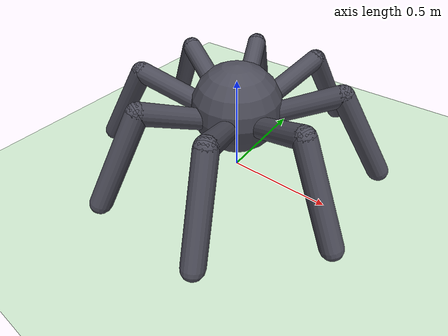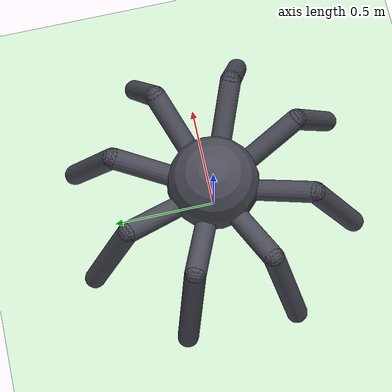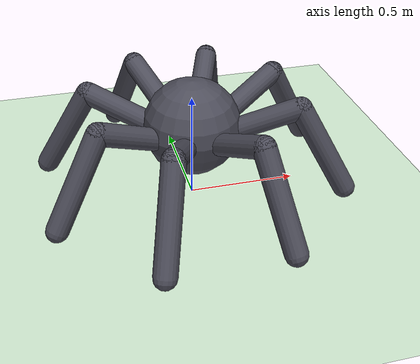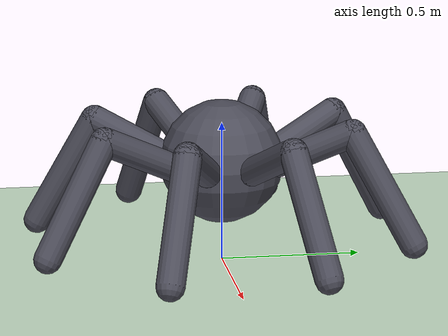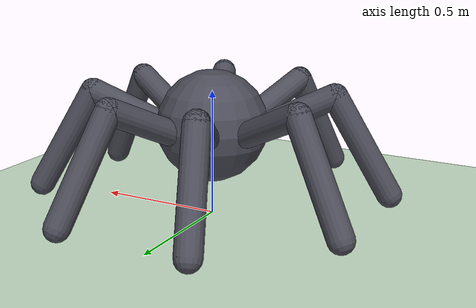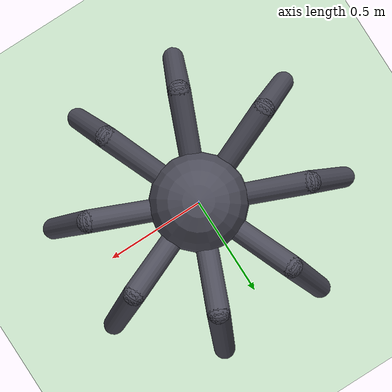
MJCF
<mujoco model="spider8">
  <compiler angle="radian"/>

  <option timestep="0.01" integrator="RK4"/>

  <default>
    <joint limited="true" armature="1" damping="1"/>
    <geom conaffinity="0" friction="1 0.5 0.5" margin="0.01" density="5" rgba="0.3 0.3 0.35 1"/>
  </default>

  <asset>
    <texture type="skybox" colorspace="auto" name="sky" builtin="gradient" rgb1="1 1 1" rgb2="0 0 0" width="100" height="600"/>
    <texture type="2d" colorspace="auto" name="texplane" builtin="checker" rgb1="0 0 0" rgb2="0.8 0.8 0.8" width="100" height="100"/>
    <material name="MatPlane" texture="texplane" texrepeat="60 60" specular="1" shininess="1" reflectance="0.5"/>
  </asset>

  <worldbody>
    <geom name="floor" size="40 40 40" type="plane" conaffinity="1" material="MatPlane" rgba="0.8 0.9 0.8 1"/>
    <light pos="0 0 1.3" dir="0 0 -1" type="directional" cutoff="100" diffuse="1 1 1" specular="0.1 0.1 0.1"/>
    <body name="torso" pos="0 0 0.362926">
      <joint name="root" type="free" margin="0.01" armature="0" damping="0"/>
      <geom name="torso_geom" size="0.22"/>
      <camera name="track" pos="0 -3 0.3" quat="0.707107 0.707107 0 0" mode="trackcom"/>
      <body name="leg1">
        <geom name="leg1_mount_geom" size="0.05 0.1" pos="0.092388 0.0382683 0" quat="0.707107 0.270598 -0.653281 0" type="capsule"/>
        <body name="leg1_seg1" pos="0.184776 0.0765367 0">
          <joint name="leg1_seg1_joint" pos="0 0 0" axis="0 0 1" range="-0.610865 0.610865"/>
          <geom name="leg1_seg1_geom" size="0.05 0.15" pos="0.125598 0.0520243 0.0633927" quat="0.5373 0.322752 -0.779192 0" type="capsule"/>
          <body name="leg1_seg2" pos="0.251196 0.104049 0.126785">
            <joint name="leg1_seg2_joint" pos="0 0 0" axis="-0.382683 0.92388 0" range="-0.785398 0.785398"/>
            <geom name="leg1_seg2_geom" size="0.05 0.225" pos="0.103936 0.0430519 -0.194856" quat="0.965926 0.0990458 -0.239118 0" type="capsule"/>
          </body>
        </body>
      </body>
      <body name="leg2">
        <geom name="leg2_mount_geom" size="0.05 0.1" pos="0.0382683 0.092388 0" quat="0.707107 0.653281 -0.270598 0" type="capsule"/>
        <body name="leg2_seg1" pos="0.0765367 0.184776 0">
          <joint name="leg2_seg1_joint" pos="0 0 0" axis="0 0 1" range="-0.610865 0.610865"/>
          <geom name="leg2_seg1_geom" size="0.05 0.15" pos="0.0520243 0.125598 0.0633927" quat="0.5373 0.779192 -0.322752 0" type="capsule"/>
          <body name="leg2_seg2" pos="0.104049 0.251196 0.126785">
            <joint name="leg2_seg2_joint" pos="0 0 0" axis="-0.92388 0.382683 0" range="-0.785398 0.785398"/>
            <geom name="leg2_seg2_geom" size="0.05 0.225" pos="0.0430519 0.103936 -0.194856" quat="0.965926 0.239118 -0.0990458 0" type="capsule"/>
          </body>
        </body>
      </body>
      <body name="leg3">
        <geom name="leg3_mount_geom" size="0.05 0.1" pos="-0.0382683 0.092388 0" quat="0.707107 0.653281 0.270598 0" type="capsule"/>
        <body name="leg3_seg1" pos="-0.0765367 0.184776 0">
          <joint name="leg3_seg1_joint" pos="0 0 0" axis="0 0 1" range="-0.610865 0.610865"/>
          <geom name="leg3_seg1_geom" size="0.05 0.15" pos="-0.0520243 0.125598 0.0633927" quat="0.5373 0.779192 0.322752 0" type="capsule"/>
          <body name="leg3_seg2" pos="-0.104049 0.251196 0.126785">
            <joint name="leg3_seg2_joint" pos="0 0 0" axis="-0.92388 -0.382683 0" range="-0.785398 0.785398"/>
            <geom name="leg3_seg2_geom" size="0.05 0.225" pos="-0.0430519 0.103936 -0.194856" quat="0.965926 0.239118 0.0990458 0" type="capsule"/>
          </body>
        </body>
      </body>
      <body name="leg4">
        <geom name="leg4_mount_geom" size="0.05 0.1" pos="-0.092388 0.0382683 0" quat="0.707107 0.270598 0.653281 0" type="capsule"/>
        <body name="leg4_seg1" pos="-0.184776 0.0765367 0">
          <joint name="leg4_seg1_joint" pos="0 0 0" axis="0 0 1" range="-0.610865 0.610865"/>
          <geom name="leg4_seg1_geom" size="0.05 0.15" pos="-0.125598 0.0520243 0.0633927" quat="0.5373 0.322752 0.779192 0" type="capsule"/>
          <body name="leg4_seg2" pos="-0.251196 0.104049 0.126785">
            <joint name="leg4_seg2_joint" pos="0 0 0" axis="-0.382683 -0.92388 0" range="-0.785398 0.785398"/>
            <geom name="leg4_seg2_geom" size="0.05 0.225" pos="-0.103936 0.0430519 -0.194856" quat="0.965926 0.0990458 0.239118 0" type="capsule"/>
          </body>
        </body>
      </body>
      <body name="leg5">
        <geom name="leg5_mount_geom" size="0.05 0.1" pos="-0.092388 -0.0382683 0" quat="0.707107 -0.270598 0.653281 0" type="capsule"/>
        <body name="leg5_seg1" pos="-0.184776 -0.0765367 0">
          <joint name="leg5_seg1_joint" pos="0 0 0" axis="0 0 1" range="-0.610865 0.610865"/>
          <geom name="leg5_seg1_geom" size="0.05 0.15" pos="-0.125598 -0.0520243 0.0633927" quat="0.5373 -0.322752 0.779192 0" type="capsule"/>
          <body name="leg5_seg2" pos="-0.251196 -0.104049 0.126785">
            <joint name="leg5_seg2_joint" pos="0 0 0" axis="0.382683 -0.92388 0" range="-0.785398 0.785398"/>
            <geom name="leg5_seg2_geom" size="0.05 0.225" pos="-0.103936 -0.0430519 -0.194856" quat="0.965926 -0.0990458 0.239118 0" type="capsule"/>
          </body>
        </body>
      </body>
      <body name="leg6">
        <geom name="leg6_mount_geom" size="0.05 0.1" pos="-0.0382683 -0.092388 0" quat="0.707107 -0.653281 0.270598 0" type="capsule"/>
        <body name="leg6_seg1" pos="-0.0765367 -0.184776 0">
          <joint name="leg6_seg1_joint" pos="0 0 0" axis="0 0 1" range="-0.610865 0.610865"/>
          <geom name="leg6_seg1_geom" size="0.05 0.15" pos="-0.0520243 -0.125598 0.0633927" quat="0.5373 -0.779192 0.322752 0" type="capsule"/>
          <body name="leg6_seg2" pos="-0.104049 -0.251196 0.126785">
            <joint name="leg6_seg2_joint" pos="0 0 0" axis="0.92388 -0.382683 0" range="-0.785398 0.785398"/>
            <geom name="leg6_seg2_geom" size="0.05 0.225" pos="-0.0430519 -0.103936 -0.194856" quat="0.965926 -0.239118 0.0990458 0" type="capsule"/>
          </body>
        </body>
      </body>
      <body name="leg7">
        <geom name="leg7_mount_geom" size="0.05 0.1" pos="0.0382683 -0.092388 0" quat="0.707107 -0.653281 -0.270598 0" type="capsule"/>
        <body name="leg7_seg1" pos="0.0765367 -0.184776 0">
          <joint name="leg7_seg1_joint" pos="0 0 0" axis="0 0 1" range="-0.610865 0.610865"/>
          <geom name="leg7_seg1_geom" size="0.05 0.15" pos="0.0520243 -0.125598 0.0633927" quat="0.5373 -0.779192 -0.322752 0" type="capsule"/>
          <body name="leg7_seg2" pos="0.104049 -0.251196 0.126785">
            <joint name="leg7_seg2_joint" pos="0 0 0" axis="0.92388 0.382683 0" range="-0.785398 0.785398"/>
            <geom name="leg7_seg2_geom" size="0.05 0.225" pos="0.0430519 -0.103936 -0.194856" quat="0.965926 -0.239118 -0.0990458 0" type="capsule"/>
          </body>
        </body>
      </body>
      <body name="leg8">
        <geom name="leg8_mount_geom" size="0.05 0.1" pos="0.092388 -0.0382683 0" quat="0.707107 -0.270598 -0.653281 0" type="capsule"/>
        <body name="leg8_seg1" pos="0.184776 -0.0765367 0">
          <joint name="leg8_seg1_joint" pos="0 0 0" axis="0 0 1" range="-0.610865 0.610865"/>
          <geom name="leg8_seg1_geom" size="0.05 0.15" pos="0.125598 -0.0520243 0.0633927" quat="0.5373 -0.322752 -0.779192 0" type="capsule"/>
          <body name="leg8_seg2" pos="0.251196 -0.104049 0.126785">
            <joint name="leg8_seg2_joint" pos="0 0 0" axis="0.382683 0.92388 0" range="-0.785398 0.785398"/>
            <geom name="leg8_seg2_geom" size="0.05 0.225" pos="0.103936 -0.0430519 -0.194856" quat="0.965926 -0.0990458 -0.239118 0" type="capsule"/>
          </body>
        </body>
      </body>
    </body>
  </worldbody>

  <actuator>
    <general name="leg1_seg1_motor" joint="leg1_seg1_joint" ctrllimited="true" ctrlrange="-1 1" gear="100 0 0 0 0 0"/>
    <general name="leg1_seg2_motor" joint="leg1_seg2_joint" ctrllimited="true" ctrlrange="-1 1" gear="100 0 0 0 0 0"/>
    <general name="leg2_seg1_motor" joint="leg2_seg1_joint" ctrllimited="true" ctrlrange="-1 1" gear="100 0 0 0 0 0"/>
    <general name="leg2_seg2_motor" joint="leg2_seg2_joint" ctrllimited="true" ctrlrange="-1 1" gear="100 0 0 0 0 0"/>
    <general name="leg3_seg1_motor" joint="leg3_seg1_joint" ctrllimited="true" ctrlrange="-1 1" gear="100 0 0 0 0 0"/>
    <general name="leg3_seg2_motor" joint="leg3_seg2_joint" ctrllimited="true" ctrlrange="-1 1" gear="100 0 0 0 0 0"/>
    <general name="leg4_seg1_motor" joint="leg4_seg1_joint" ctrllimited="true" ctrlrange="-1 1" gear="100 0 0 0 0 0"/>
    <general name="leg4_seg2_motor" joint="leg4_seg2_joint" ctrllimited="true" ctrlrange="-1 1" gear="100 0 0 0 0 0"/>
    <general name="leg5_seg1_motor" joint="leg5_seg1_joint" ctrllimited="true" ctrlrange="-1 1" gear="100 0 0 0 0 0"/>
    <general name="leg5_seg2_motor" joint="leg5_seg2_joint" ctrllimited="true" ctrlrange="-1 1" gear="100 0 0 0 0 0"/>
    <general name="leg6_seg1_motor" joint="leg6_seg1_joint" ctrllimited="true" ctrlrange="-1 1" gear="100 0 0 0 0 0"/>
    <general name="leg6_seg2_motor" joint="leg6_seg2_joint" ctrllimited="true" ctrlrange="-1 1" gear="100 0 0 0 0 0"/>
    <general name="leg7_seg1_motor" joint="leg7_seg1_joint" ctrllimited="true" ctrlrange="-1 1" gear="100 0 0 0 0 0"/>
    <general name="leg7_seg2_motor" joint="leg7_seg2_joint" ctrllimited="true" ctrlrange="-1 1" gear="100 0 0 0 0 0"/>
    <general name="leg8_seg1_motor" joint="leg8_seg1_joint" ctrllimited="true" ctrlrange="-1 1" gear="100 0 0 0 0 0"/>
    <general name="leg8_seg2_motor" joint="leg8_seg2_joint" ctrllimited="true" ctrlrange="-1 1" gear="100 0 0 0 0 0"/>
  </actuator>
</mujoco>
